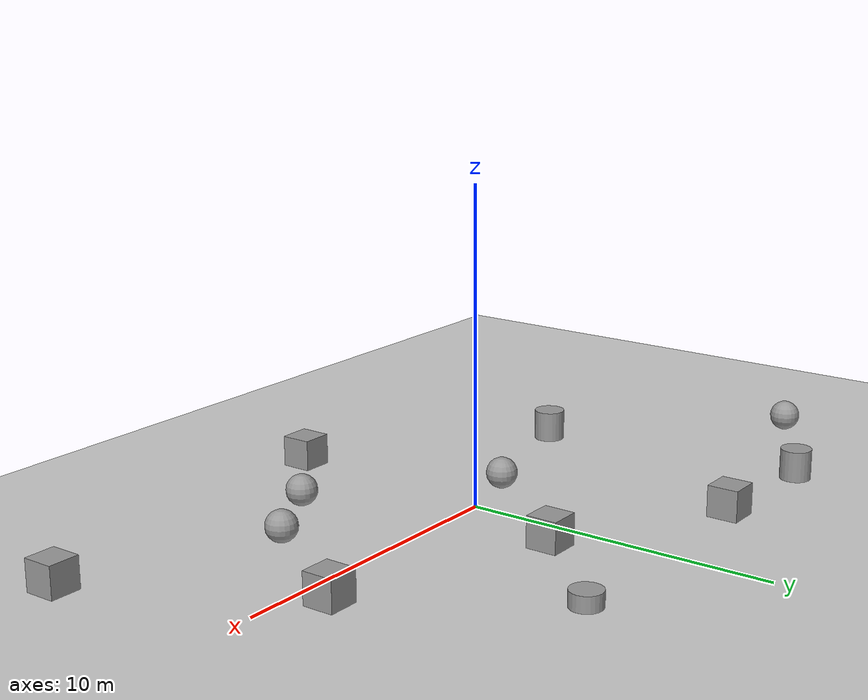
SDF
<sdf version="1.7">
 <world name="default">
  <scene>
   <sky><ambient>0.5 0.7 1.0 1.0</ambient></sky>
   <ambient>0.4 0.4 0.4 1</ambient>
   <background>0.7 0.7 0.7 1</background>
   <shadows>1</shadows>
  </scene>
  <light name="sun" type="directional">
   <pose>0 0 10 0 -0 0</pose>
   <diffuse>0.8 0.8 0.8 1</diffuse>
   <specular>0.2 0.2 0.2 1</specular>
   <attenuation>
    <range>1000</range>
    <constant>0.9</constant>
    <linear>0.01</linear>
    <quadratic>0.001</quadratic>
   </attenuation>
   <direction>-0.5 0.1 -0.9</direction>
   <spot><inner_angle>0</inner_angle><outer_angle>0</outer_angle><falloff>0</falloff></spot>
  </light>
  <model name="ground_plane">
   <static>1</static>
   <link name="link">
    <collision name="collision">
     <geometry><plane><normal>0 0 1</normal><size>100 100</size></plane></geometry>
     <surface>
      <contact><collide_bitmask>65535</collide_bitmask></contact>
      <friction><ode><mu>100</mu><mu2>50</mu2></ode></friction>
     </surface>
    </collision>
    <visual name="visual">
     <cast_shadows>0</cast_shadows>
     <geometry><plane><normal>0 0 1</normal><size>100 100</size></plane></geometry>
     <material>
      <script><uri>file://media/materials/scripts/gazebo.material</uri><name>Gazebo/Grey</name></script>
     </material>
    </visual>
   </link>
  </model>
  <gravity>0 0 -9.8</gravity>
  <magnetic_field>6e-06 2.3e-05 -4.2e-05</magnetic_field>
  <atmosphere type="adiabatic"/>
  <physics type="ode">
   <max_step_size>0.001</max_step_size>
   <real_time_factor>1</real_time_factor>
   <real_time_update_rate>1000</real_time_update_rate>
  </physics>
  <scene><ambient>0.4 0.4 0.4 1</ambient><background>0.7 0.7 0.7 1</background><shadows>1</shadows></scene>
  <spherical_coordinates>
   <surface_model>EARTH_WGS84</surface_model>
   <latitude_deg>0</latitude_deg>
   <longitude_deg>0</longitude_deg>
   <elevation>0</elevation>
   <heading_deg>0</heading_deg>
  </spherical_coordinates>
  <model name="unit_sphere">
   <pose>5.62842 -2.86831 0.5 0 -0 0</pose>
   <link name="link">
    <inertial>
     <mass>1</mass>
     <inertia><ixx>0.001</ixx><iyy>0.001</iyy><izz>0.001</izz><ixy>0</ixy><ixz>0</ixz><iyz>0</iyz></inertia>
    </inertial>
    <collision name="collision"><geometry><sphere><radius>0.5</radius></sphere></geometry></collision>
    <visual name="visual">
     <geometry><sphere><radius>0.5</radius></sphere></geometry>
     <material>
      <script><name>Gazebo/Grey</name><uri>file://media/materials/scripts/gazebo.material</uri></script>
     </material>
    </visual>
   </link>
  </model>
  <model name="unit_box">
   <pose>8.12922 1.08801 0.499995 1e-05 -0 0</pose>
   <link name="link">
    <inertial>
     <mass>1</mass>
     <inertia>
      <ixx>0.166667</ixx>
      <ixy>0</ixy>
      <ixz>0</ixz>
      <iyy>0.166667</iyy>
      <iyz>0</iyz>
      <izz>0.166667</izz>
     </inertia>
    </inertial>
    <collision name="collision"><geometry><box><size>1 1 1</size></box></geometry></collision>
    <visual name="visual">
     <geometry><box><size>1 1 1</size></box></geometry>
     <material>
      <script><name>Gazebo/Grey</name><uri>file://media/materials/scripts/gazebo.material</uri></script>
     </material>
    </visual>
   </link>
  </model>
  <model name="unit_cylinder">
   <pose>4.29463 6.66747 0.249999 0 -0 0</pose>
   <link name="link">
    <inertial>
     <mass>1</mass>
     <inertia><ixx>0.145833</ixx><ixy>0</ixy><ixz>0</ixz><iyy>0.145833</iyy><iyz>0</iyz><izz>0.125</izz></inertia>
    </inertial>
    <collision name="collision">
     <geometry><cylinder><radius>0.5</radius><length>0.5</length></cylinder></geometry>
    </collision>
    <visual name="visual">
     <geometry><cylinder><radius>0.5</radius><length>0.5</length></cylinder></geometry>
     <material>
      <script><name>Gazebo/Grey</name><uri>file://media/materials/scripts/gazebo.material</uri></script>
     </material>
    </visual>
   </link>
  </model>
  <model name="unit_sphere_0">
   <pose>3.011 -4.40798 0.5 0 -0 0</pose>
   <link name="link">
    <inertial>
     <mass>1</mass>
     <inertia><ixx>0.1</ixx><ixy>0</ixy><ixz>0</ixz><iyy>0.1</iyy><iyz>0</iyz><izz>0.1</izz></inertia>
    </inertial>
    <collision name="collision"><geometry><sphere><radius>0.5</radius></sphere></geometry></collision>
    <visual name="visual">
     <geometry><sphere><radius>0.5</radius></sphere></geometry>
     <material>
      <script><name>Gazebo/Grey</name><uri>file://media/materials/scripts/gazebo.material</uri></script>
     </material>
    </visual>
   </link>
  </model>
  <model name="unit_box_0">
   <pose>1.36423 3.62591 0.499995 0 1e-05 0</pose>
   <link name="link">
    <inertial>
     <mass>1</mass>
     <inertia>
      <ixx>0.166667</ixx>
      <ixy>0</ixy>
      <ixz>0</ixz>
      <iyy>0.166667</iyy>
      <iyz>0</iyz>
      <izz>0.166667</izz>
     </inertia>
    </inertial>
    <collision name="collision"><geometry><box><size>1 1 1</size></box></geometry></collision>
    <visual name="visual">
     <geometry><box><size>1 1 1</size></box></geometry>
     <material>
      <script><name>Gazebo/Grey</name><uri>file://media/materials/scripts/gazebo.material</uri></script>
     </material>
    </visual>
   </link>
  </model>
  <model name="unit_cylinder_0">
   <pose>-8.18251 6.84787 0.499996 -3e-06 3e-06 0</pose>
   <link name="link">
    <inertial>
     <mass>1</mass>
     <inertia><ixx>0.145833</ixx><ixy>0</ixy><ixz>0</ixz><iyy>0.145833</iyy><iyz>0</iyz><izz>0.125</izz></inertia>
    </inertial>
    <collision name="collision">
     <geometry><cylinder><radius>0.5</radius><length>1</length></cylinder></geometry>
    </collision>
    <visual name="visual">
     <geometry><cylinder><radius>0.5</radius><length>1</length></cylinder></geometry>
     <material>
      <script><name>Gazebo/Grey</name><uri>file://media/materials/scripts/gazebo.material</uri></script>
     </material>
    </visual>
   </link>
  </model>
  <model name="unit_sphere_1">
   <pose>-1.88838 -0.315966 0.5 0 -0 0</pose>
   <link name="link">
    <inertial>
     <mass>1</mass>
     <inertia><ixx>0.1</ixx><ixy>0</ixy><ixz>0</ixz><iyy>0.1</iyy><iyz>0</iyz><izz>0.1</izz></inertia>
    </inertial>
    <collision name="collision"><geometry><sphere><radius>0.5</radius></sphere></geometry></collision>
    <visual name="visual">
     <geometry><sphere><radius>0.5</radius></sphere></geometry>
     <material>
      <script><name>Gazebo/Grey</name><uri>file://media/materials/scripts/gazebo.material</uri></script>
     </material>
    </visual>
   </link>
  </model>
  <model name="unit_cylinder_1">
   <pose>-7.02777 -1.86369 0.499996 -4e-06 3e-06 0</pose>
   <link name="link">
    <inertial>
     <mass>1</mass>
     <inertia><ixx>0.145833</ixx><ixy>0</ixy><ixz>0</ixz><iyy>0.145833</iyy><iyz>0</iyz><izz>0.125</izz></inertia>
    </inertial>
    <collision name="collision">
     <geometry><cylinder><radius>0.5</radius><length>1</length></cylinder></geometry>
    </collision>
    <visual name="visual">
     <geometry><cylinder><radius>0.5</radius><length>1</length></cylinder></geometry>
     <material>
      <script><name>Gazebo/Grey</name><uri>file://media/materials/scripts/gazebo.material</uri></script>
     </material>
    </visual>
   </link>
  </model>
  <model name="unit_box_1">
   <pose>0.050818 -6.85034 0.499995 0 -1e-05 0</pose>
   <link name="link">
    <inertial>
     <mass>1</mass>
     <inertia>
      <ixx>0.166667</ixx>
      <ixy>0</ixy>
      <ixz>0</ixz>
      <iyy>0.166667</iyy>
      <iyz>0</iyz>
      <izz>0.166667</izz>
     </inertia>
    </inertial>
    <collision name="collision"><geometry><box><size>1 1 1</size></box></geometry></collision>
    <visual name="visual">
     <geometry><box><size>1 1 1</size></box></geometry>
     <material>
      <script><name>Gazebo/Grey</name><uri>file://media/materials/scripts/gazebo.material</uri></script>
     </material>
    </visual>
   </link>
  </model>
  <model name="unit_box_2">
   <pose>11.8204 -5.50164 0.499995 1e-05 -0 0</pose>
   <link name="link">
    <inertial>
     <mass>1</mass>
     <inertia>
      <ixx>0.166667</ixx>
      <ixy>0</ixy>
      <ixz>0</ixz>
      <iyy>0.166667</iyy>
      <iyz>0</iyz>
      <izz>0.166667</izz>
     </inertia>
    </inertial>
    <collision name="collision"><geometry><box><size>1 1 1</size></box></geometry></collision>
    <visual name="visual">
     <geometry><box><size>1 1 1</size></box></geometry>
     <material>
      <script><name>Gazebo/Grey</name><uri>file://media/materials/scripts/gazebo.material</uri></script>
     </material>
    </visual>
   </link>
  </model>
  <model name="unit_box_4">
   <pose>-3.91967 6.65381 0.499995 1e-05 -0 0</pose>
   <link name="link">
    <inertial>
     <mass>1</mass>
     <inertia>
      <ixx>0.166667</ixx>
      <ixy>0</ixy>
      <ixz>0</ixz>
      <iyy>0.166667</iyy>
      <iyz>0</iyz>
      <izz>0.166667</izz>
     </inertia>
    </inertial>
    <collision name="collision"><geometry><box><size>1 1 1</size></box></geometry></collision>
    <visual name="visual">
     <geometry><box><size>1 1 1</size></box></geometry>
     <material>
      <script><name>Gazebo/Grey</name><uri>file://media/materials/scripts/gazebo.material</uri></script>
     </material>
    </visual>
   </link>
  </model>
  <model name="unit_sphere_2">
   <pose>-12.7146 4.34234 0.5 0 -0 0</pose>
   <link name="link">
    <inertial>
     <mass>1</mass>
     <inertia><ixx>0.1</ixx><ixy>0</ixy><ixz>0</ixz><iyy>0.1</iyy><iyz>0</iyz><izz>0.1</izz></inertia>
    </inertial>
    <collision name="collision"><geometry><sphere><radius>0.5</radius></sphere></geometry></collision>
    <visual name="visual">
     <geometry><sphere><radius>0.5</radius></sphere></geometry>
     <material>
      <script><name>Gazebo/Grey</name><uri>file://media/materials/scripts/gazebo.material</uri></script>
     </material>
    </visual>
   </link>
  </model>
 </world>
</sdf>
